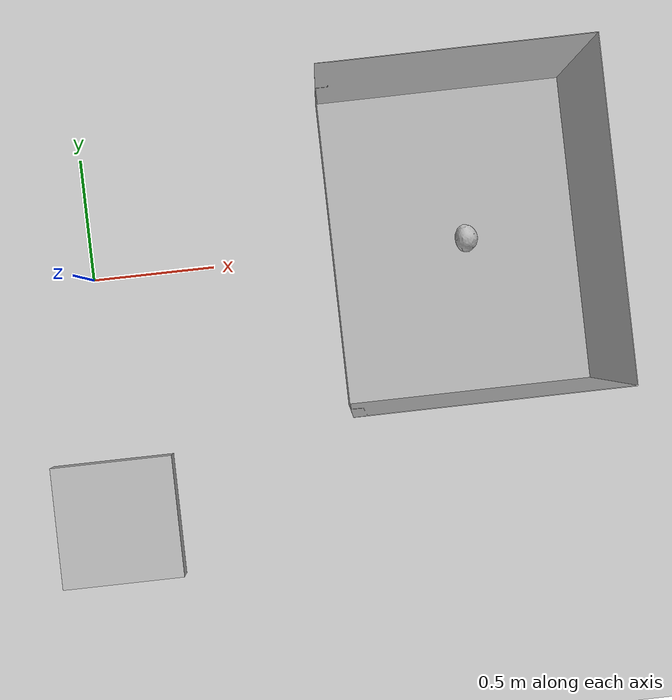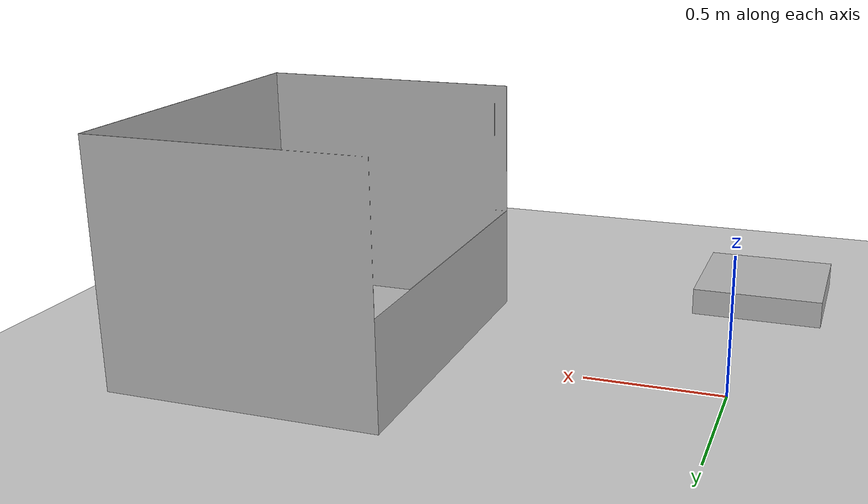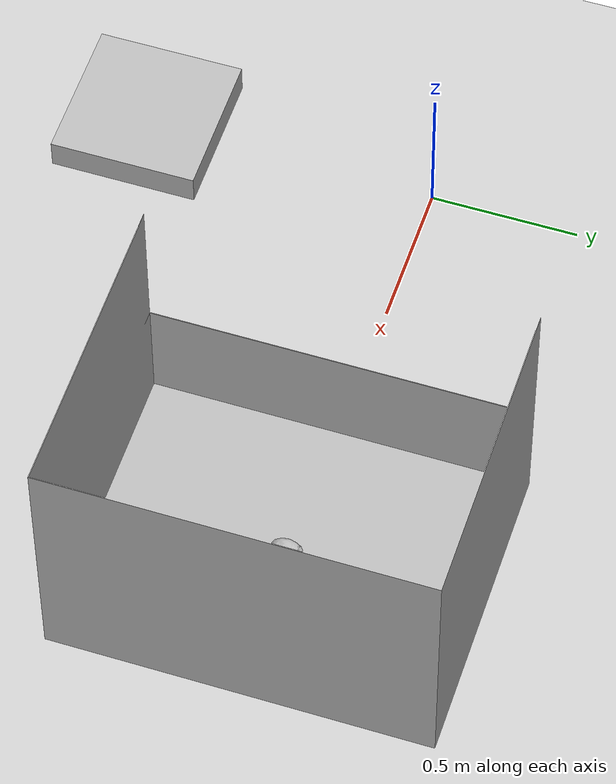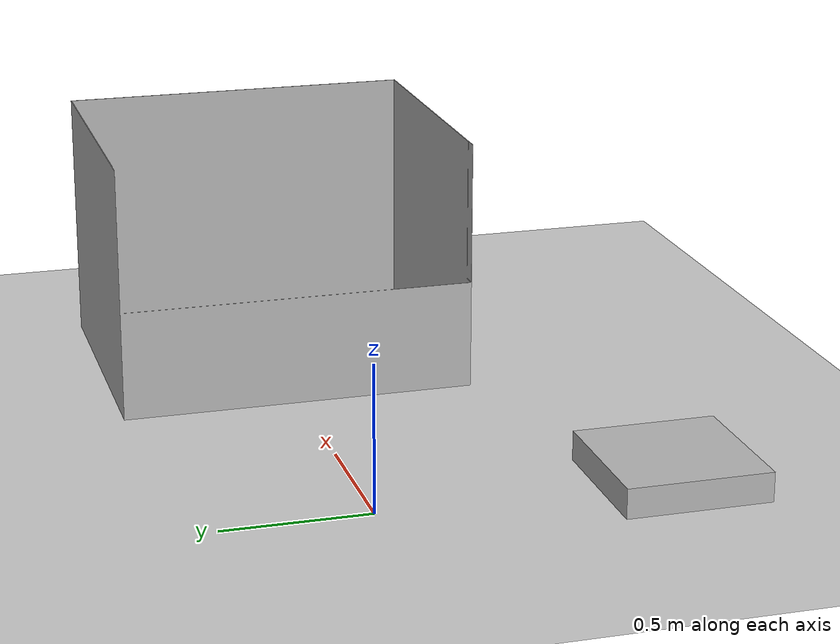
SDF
<?xml version="1.0"?>
<sdf version="1.4">
  <world name="default">
    <include>
      <uri>model://ground_plane</uri>
    </include>
    <include>
      <uri>model://sun</uri>
    </include>
    <include>
      <uri>model://mytable</uri>
      <pose>0 -1 0 0 0 0</pose>
    </include>
    <include>
      <name>container</name>
      <uri>model://big_container_open</uri>
      <pose>1.5 0 0 0 0 -1.570</pose>
    </include>
    <!-- cabagges -->
    <include>
      <name>cabbage_0</name>
      <uri>model://cabbage</uri>
      <pose>1.5 0 0.1 0 0 -1.570</pose>
    </include>
  </world>
</sdf>

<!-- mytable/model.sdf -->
<sdf version="1.4">
    <model name="mytable">
        <link name="link">
            <inertial>
                <mass>1</mass>
                <inertia>
                    <ixx>0.083</ixx>
                    <ixy>0.0</ixy>
                    <ixz>0.0</ixz>
                    <iyy>0.083</iyy>
                    <iyz>0.0</iyz>
                    <izz>0.083</izz>
                </inertia>
            </inertial>
            <collision name="collision">
                <geometry>
                    <box>
                        <size>0.5 0.5 0.2</size>
                    </box>
                </geometry>
            </collision>
            <visual name="visual">
                <geometry>
                    <box>
                        <size>0.5 0.5 0.2</size>
                    </box>
                </geometry>
            </visual>
        </link>
    </model>
</sdf>

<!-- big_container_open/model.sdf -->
<sdf version="1.4">
    <model name="big_container_open">
        <static>1</static>
        <link name="link">
            <inertial>
                <mass>1</mass>
                <inertia>
                    <ixx>1.0</ixx>
                    <ixy>0.0</ixy>
                    <ixz>0.0</ixz>
                    <iyy>1.0</iyy>
                    <iyz>0.0</iyz>
                    <izz>1.0</izz>
                </inertia>
            </inertial>
            <collision name="collision">
                <geometry>
                    <mesh>
                        <scale>0.001 0.001 0.001</scale>
                        <uri>model://big_container_open/big_container_open_meshlab.dae</uri>
                    </mesh>
                </geometry>
                <surface>
                    <friction>
                        <ode>
                            <mu>0.6</mu>
                            <mu2>0.6</mu2>
                        </ode>
                    </friction>
                    <contact>
                        <ode>
                            <max_vel>0.1</max_vel>
                            <min_depth>0.0001</min_depth>
                        </ode>
                    </contact>
                </surface>
            </collision>
            <visual name="visual">
                <geometry>
                    <mesh>
                        <scale>0.001 0.001 0.001</scale>
                        <uri>model://big_container_open/big_container_open_meshlab.dae</uri>
                    </mesh>
                </geometry>
            </visual>
        </link>
    </model>
</sdf>

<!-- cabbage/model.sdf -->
<sdf version="1.4">
    <model name="cabbage">
        <link name="link">
            <inertial>
                <!-- set right values -->
                <mass>1</mass>
                <inertia>
                    <ixx>0.001</ixx>
                    <ixy>0.0</ixy>
                    <ixz>0.0</ixz>
                    <iyy>0.001</iyy>
                    <iyz>0.0</iyz>
                    <izz>0.001</izz>
                </inertia>
            </inertial>
            <collision name="collision">
                <geometry>
                    <mesh>
                        <scale>0.001 0.001 0.001</scale>
                        <uri>model://cabbage/cabbage_single.dae</uri>
                    </mesh>
                </geometry>
                <!-- ref: https://qiita.com/Yuya-Shimizu/items/f1a22d430a3f6343b3e7 -->
                <surface>
                    <friction>
                        <ode>
                            <mu>0.8</mu>
                            <mu2>0.8</mu2>
                        </ode>
                    </friction>
                    <contact>
                        <ode>
                            <max_vel>0.1</max_vel>
                            <min_depth>0.0001</min_depth>
                        </ode>
                    </contact>
                </surface>
            </collision>
            <visual name="visual">
                <geometry>
                    <mesh>
                        <scale>0.001 0.001 0.001</scale>
                        <uri>model://cabbage/cabbage_single.dae</uri>
                    </mesh>
                </geometry>
                <material>
                    <script>
                        <uri>model://cabbage/texture.material</uri>
                        <name>CabbageTexture</name>
                    </script>
                </material>
            </visual>
        </link>
    </model>
</sdf>
